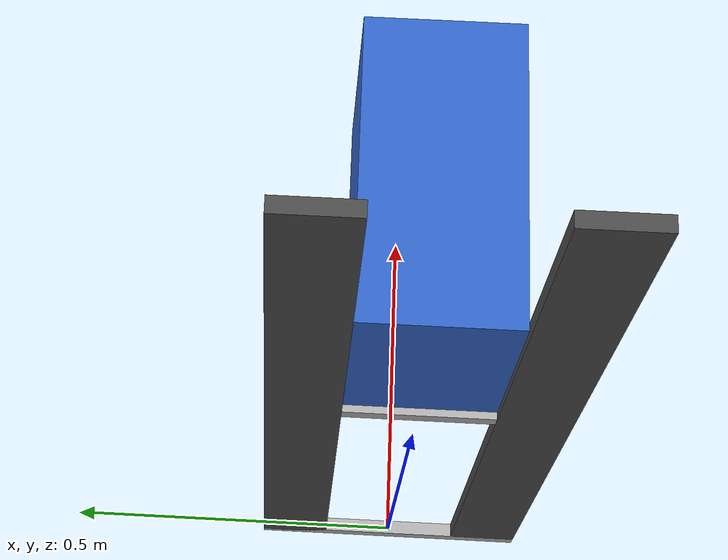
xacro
<?xml version="1.0"?>
<robot xmlns:xacro="http://www.ros.org/wiki/xacro">
  <xacro:property name="cm2m" value="0.01" />
  <xacro:property name="mm2m" value="0.001" />
  <xacro:property name="deg2rad" value="${3.14159265/180.0}" />

  <!-- 夹抱装置参数 -->
  <xacro:property name="chassis_width" value="0.4" />
  <xacro:property name="lift_arm_h" value="1.2" />
  <xacro:property name="lift_arm_thick" value="0.02" />
  <xacro:property name="lift_arm_w" value="0.1" />
  <xacro:property name="gripper_h" value="0.3" />
  <xacro:property name="gripper_w" value="0.3" />
  <xacro:property name="gripper_len" value="0.4" />

  <!-- 夹抱装置物理结构 -->
  <link name="lift_arm_base">
    <visual>
      <geometry><box size="${0.02} ${chassis_width} ${0.02}" /></geometry>
      <material name="silver"><color rgba="0.7 0.7 0.7 1.0" /></material>
    </visual>
    <collision><geometry><box size="${0.02} ${chassis_width} ${0.02}" /></geometry></collision>
    <inertial>
      <mass value="0.5" />
      <origin xyz="0 0 0" />
      <inertia ixx="0.001" ixy="0.0" ixz="0.0" iyy="0.005" iyz="0.0" izz="0.001" />
    </inertial>
  </link>

  <joint name="left_lift_arm_joint" type="fixed">
    <parent link="lift_arm_base" />
    <child link="left_lift_arm" />
    <origin xyz="0 ${chassis_width/2 - lift_arm_w/2} ${lift_arm_h/2}" rpy="0 0 0" />
  </joint>
  <link name="left_lift_arm">
    <visual><geometry><box size="${lift_arm_thick} ${lift_arm_w} ${lift_arm_h}" /></geometry><material name="gray"><color rgba="0.3 0.3 0.3 1.0" /></material></visual>
    <collision><geometry><box size="${lift_arm_thick} ${lift_arm_w} ${lift_arm_h}" /></geometry></collision>
    <inertial><mass value="0.4" /><inertia ixx="0.03" ixy="0.0" ixz="0.0" iyy="0.0005" iyz="0.0" izz="0.03" /></inertial>
  </link>

  <joint name="right_lift_arm_joint" type="fixed">
    <parent link="lift_arm_base" />
    <child link="right_lift_arm" />
    <origin xyz="0 ${-chassis_width/2 + lift_arm_w/2} ${lift_arm_h/2}" rpy="0 0 0" />
  </joint>
  <link name="right_lift_arm">
    <visual><geometry><box size="${lift_arm_thick} ${lift_arm_w} ${lift_arm_h}" /></geometry><material name="gray"><color rgba="0.3 0.3 0.3 1.0" /></material></visual>
    <collision><geometry><box size="${lift_arm_thick} ${lift_arm_w} ${lift_arm_h}" /></geometry></collision>
    <inertial><mass value="0.4" /><inertia ixx="0.03" ixy="0.0" ixz="0.0" iyy="0.0005" iyz="0.0" izz="0.03" /></inertial>
  </link>

  <joint name="gripper_slider_joint" type="prismatic">
    <parent link="lift_arm_base" />
    <child link="gripper_slider" />
    <axis xyz="0 0 1" />
    <limit lower="0.2" upper="1.0" effort="40.0" velocity="0.2" />
    <dynamics damping="1.5" friction="0.5" />
  </joint>
  <link name="gripper_slider">
    <visual><geometry><box size="${0.02} ${chassis_width - 2*lift_arm_w} ${0.02}" /></geometry><material name="silver"><color rgba="0.7 0.7 0.7 1.0" /></material></visual>
    <collision><geometry><box size="${0.02} ${chassis_width - 2*lift_arm_w} ${0.02}" /></geometry></collision>
    <inertial><mass value="0.3" /><inertia ixx="0.001" ixy="0.0" ixz="0.0" iyy="0.002" iyz="0.0" izz="0.001" /></inertial>
  </link>

  <joint name="gripper_extend_joint" type="prismatic">
    <parent link="gripper_slider" />
    <child link="gripper" />
    <axis xyz="1 0 0" />
    <limit lower="0" upper="${gripper_len}" effort="20.0" velocity="0.15" />
    <origin xyz="0 0 ${gripper_h/2}" />
  </joint>
  <link name="gripper">
    <visual><geometry><box size="${gripper_len} ${chassis_width - 2*lift_arm_w} ${gripper_h}" /></geometry><material name="blue"><color rgba="0.2 0.4 0.8 1.0" /></material><origin xyz="${gripper_len/2} 0 0" /></visual>
    <collision><geometry><box size="${gripper_len} ${chassis_width - 2*lift_arm_w} ${gripper_h}" /></geometry></collision>
    <inertial><mass value="0.5" /><inertia ixx="0.01" ixy="0.0" ixz="0.0" iyy="0.008" iyz="0.0" izz="0.01" /></inertial>
  </link>

  <!-- 挂载宏 -->
  <xacro:macro name="hikvision_gripper" params="parent_link">
    <joint name="tiago_lift_joint" type="fixed">
      <parent link="${parent_link}" />
      <child link="lift_arm_base" />
      <origin xyz="0 0 0.1" rpy="0 0 0" />
      <axis xyz="0 0 1" />
      <limit effort="1000" velocity="1000" />
    </joint>
  </xacro:macro>
</robot>
